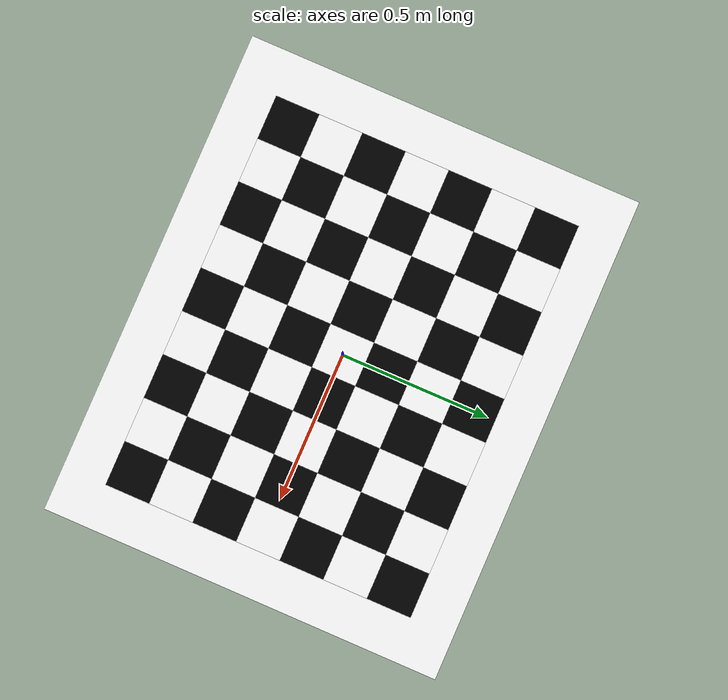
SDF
<?xml version="1.0"?>
<sdf version="1.5">
  <model name="checkerboard_9_7_0_15">
  <static>true</static>
  <link name="checkerboard_9_7_0_15_body">
      <visual name="checker_0_0">
        <pose>-0.6 -0.45 0 0 0 0</pose>
        <geometry>
          <box>
            <size>0.15 0.15 0.02</size>
          </box>
        </geometry>
        <material>
          <ambient>0 0 0 1</ambient>
          <diffuse>0 0 0 1</diffuse>
          <specular>0 0 0 1</specular>
          <emissive>0 0 0 1</emissive>
        </material>
      </visual>
      <visual name="checker_0_1">
        <pose>-0.6 -0.3 0 0 0 0</pose>
        <geometry>
          <box>
            <size>0.15 0.15 0.02</size>
          </box>
        </geometry>
        <material>
          <ambient>1 1 1 1</ambient>
          <diffuse>1 1 1 1</diffuse>
          <specular>1 1 1 1</specular>
          <emissive>1 1 1 1</emissive>
        </material>
      </visual>
      <visual name="checker_0_2">
        <pose>-0.6 -0.15 0 0 0 0</pose>
        <geometry>
          <box>
            <size>0.15 0.15 0.02</size>
          </box>
        </geometry>
        <material>
          <ambient>0 0 0 1</ambient>
          <diffuse>0 0 0 1</diffuse>
          <specular>0 0 0 1</specular>
          <emissive>0 0 0 1</emissive>
        </material>
      </visual>
      <visual name="checker_0_3">
        <pose>-0.6 -1.11022302463e-16 0 0 0 0</pose>
        <geometry>
          <box>
            <size>0.15 0.15 0.02</size>
          </box>
        </geometry>
        <material>
          <ambient>1 1 1 1</ambient>
          <diffuse>1 1 1 1</diffuse>
          <specular>1 1 1 1</specular>
          <emissive>1 1 1 1</emissive>
        </material>
      </visual>
      <visual name="checker_0_4">
        <pose>-0.6 0.15 0 0 0 0</pose>
        <geometry>
          <box>
            <size>0.15 0.15 0.02</size>
          </box>
        </geometry>
        <material>
          <ambient>0 0 0 1</ambient>
          <diffuse>0 0 0 1</diffuse>
          <specular>0 0 0 1</specular>
          <emissive>0 0 0 1</emissive>
        </material>
      </visual>
      <visual name="checker_0_5">
        <pose>-0.6 0.3 0 0 0 0</pose>
        <geometry>
          <box>
            <size>0.15 0.15 0.02</size>
          </box>
        </geometry>
        <material>
          <ambient>1 1 1 1</ambient>
          <diffuse>1 1 1 1</diffuse>
          <specular>1 1 1 1</specular>
          <emissive>1 1 1 1</emissive>
        </material>
      </visual>
      <visual name="checker_0_6">
        <pose>-0.6 0.45 0 0 0 0</pose>
        <geometry>
          <box>
            <size>0.15 0.15 0.02</size>
          </box>
        </geometry>
        <material>
          <ambient>0 0 0 1</ambient>
          <diffuse>0 0 0 1</diffuse>
          <specular>0 0 0 1</specular>
          <emissive>0 0 0 1</emissive>
        </material>
      </visual>
      <visual name="checker_1_0">
        <pose>-0.45 -0.45 0 0 0 0</pose>
        <geometry>
          <box>
            <size>0.15 0.15 0.02</size>
          </box>
        </geometry>
        <material>
          <ambient>1 1 1 1</ambient>
          <diffuse>1 1 1 1</diffuse>
          <specular>1 1 1 1</specular>
          <emissive>1 1 1 1</emissive>
        </material>
      </visual>
      <visual name="checker_1_1">
        <pose>-0.45 -0.3 0 0 0 0</pose>
        <geometry>
          <box>
            <size>0.15 0.15 0.02</size>
          </box>
        </geometry>
        <material>
          <ambient>0 0 0 1</ambient>
          <diffuse>0 0 0 1</diffuse>
          <specular>0 0 0 1</specular>
          <emissive>0 0 0 1</emissive>
        </material>
      </visual>
      <visual name="checker_1_2">
        <pose>-0.45 -0.15 0 0 0 0</pose>
        <geometry>
          <box>
            <size>0.15 0.15 0.02</size>
          </box>
        </geometry>
        <material>
          <ambient>1 1 1 1</ambient>
          <diffuse>1 1 1 1</diffuse>
          <specular>1 1 1 1</specular>
          <emissive>1 1 1 1</emissive>
        </material>
      </visual>
      <visual name="checker_1_3">
        <pose>-0.45 -1.11022302463e-16 0 0 0 0</pose>
        <geometry>
          <box>
            <size>0.15 0.15 0.02</size>
          </box>
        </geometry>
        <material>
          <ambient>0 0 0 1</ambient>
          <diffuse>0 0 0 1</diffuse>
          <specular>0 0 0 1</specular>
          <emissive>0 0 0 1</emissive>
        </material>
      </visual>
      <visual name="checker_1_4">
        <pose>-0.45 0.15 0 0 0 0</pose>
        <geometry>
          <box>
            <size>0.15 0.15 0.02</size>
          </box>
        </geometry>
        <material>
          <ambient>1 1 1 1</ambient>
          <diffuse>1 1 1 1</diffuse>
          <specular>1 1 1 1</specular>
          <emissive>1 1 1 1</emissive>
        </material>
      </visual>
      <visual name="checker_1_5">
        <pose>-0.45 0.3 0 0 0 0</pose>
        <geometry>
          <box>
            <size>0.15 0.15 0.02</size>
          </box>
        </geometry>
        <material>
          <ambient>0 0 0 1</ambient>
          <diffuse>0 0 0 1</diffuse>
          <specular>0 0 0 1</specular>
          <emissive>0 0 0 1</emissive>
        </material>
      </visual>
      <visual name="checker_1_6">
        <pose>-0.45 0.45 0 0 0 0</pose>
        <geometry>
          <box>
            <size>0.15 0.15 0.02</size>
          </box>
        </geometry>
        <material>
          <ambient>1 1 1 1</ambient>
          <diffuse>1 1 1 1</diffuse>
          <specular>1 1 1 1</specular>
          <emissive>1 1 1 1</emissive>
        </material>
      </visual>
      <visual name="checker_2_0">
        <pose>-0.3 -0.45 0 0 0 0</pose>
        <geometry>
          <box>
            <size>0.15 0.15 0.02</size>
          </box>
        </geometry>
        <material>
          <ambient>0 0 0 1</ambient>
          <diffuse>0 0 0 1</diffuse>
          <specular>0 0 0 1</specular>
          <emissive>0 0 0 1</emissive>
        </material>
      </visual>
      <visual name="checker_2_1">
        <pose>-0.3 -0.3 0 0 0 0</pose>
        <geometry>
          <box>
            <size>0.15 0.15 0.02</size>
          </box>
        </geometry>
        <material>
          <ambient>1 1 1 1</ambient>
          <diffuse>1 1 1 1</diffuse>
          <specular>1 1 1 1</specular>
          <emissive>1 1 1 1</emissive>
        </material>
      </visual>
      <visual name="checker_2_2">
        <pose>-0.3 -0.15 0 0 0 0</pose>
        <geometry>
          <box>
            <size>0.15 0.15 0.02</size>
          </box>
        </geometry>
        <material>
          <ambient>0 0 0 1</ambient>
          <diffuse>0 0 0 1</diffuse>
          <specular>0 0 0 1</specular>
          <emissive>0 0 0 1</emissive>
        </material>
      </visual>
      <visual name="checker_2_3">
        <pose>-0.3 -1.11022302463e-16 0 0 0 0</pose>
        <geometry>
          <box>
            <size>0.15 0.15 0.02</size>
          </box>
        </geometry>
        <material>
          <ambient>1 1 1 1</ambient>
          <diffuse>1 1 1 1</diffuse>
          <specular>1 1 1 1</specular>
          <emissive>1 1 1 1</emissive>
        </material>
      </visual>
      <visual name="checker_2_4">
        <pose>-0.3 0.15 0 0 0 0</pose>
        <geometry>
          <box>
            <size>0.15 0.15 0.02</size>
          </box>
        </geometry>
        <material>
          <ambient>0 0 0 1</ambient>
          <diffuse>0 0 0 1</diffuse>
          <specular>0 0 0 1</specular>
          <emissive>0 0 0 1</emissive>
        </material>
      </visual>
      <visual name="checker_2_5">
        <pose>-0.3 0.3 0 0 0 0</pose>
        <geometry>
          <box>
            <size>0.15 0.15 0.02</size>
          </box>
        </geometry>
        <material>
          <ambient>1 1 1 1</ambient>
          <diffuse>1 1 1 1</diffuse>
          <specular>1 1 1 1</specular>
          <emissive>1 1 1 1</emissive>
        </material>
      </visual>
      <visual name="checker_2_6">
        <pose>-0.3 0.45 0 0 0 0</pose>
        <geometry>
          <box>
            <size>0.15 0.15 0.02</size>
          </box>
        </geometry>
        <material>
          <ambient>0 0 0 1</ambient>
          <diffuse>0 0 0 1</diffuse>
          <specular>0 0 0 1</specular>
          <emissive>0 0 0 1</emissive>
        </material>
      </visual>
      <visual name="checker_3_0">
        <pose>-0.15 -0.45 0 0 0 0</pose>
        <geometry>
          <box>
            <size>0.15 0.15 0.02</size>
          </box>
        </geometry>
        <material>
          <ambient>1 1 1 1</ambient>
          <diffuse>1 1 1 1</diffuse>
          <specular>1 1 1 1</specular>
          <emissive>1 1 1 1</emissive>
        </material>
      </visual>
      <visual name="checker_3_1">
        <pose>-0.15 -0.3 0 0 0 0</pose>
        <geometry>
          <box>
            <size>0.15 0.15 0.02</size>
          </box>
        </geometry>
        <material>
          <ambient>0 0 0 1</ambient>
          <diffuse>0 0 0 1</diffuse>
          <specular>0 0 0 1</specular>
          <emissive>0 0 0 1</emissive>
        </material>
      </visual>
      <visual name="checker_3_2">
        <pose>-0.15 -0.15 0 0 0 0</pose>
        <geometry>
          <box>
            <size>0.15 0.15 0.02</size>
          </box>
        </geometry>
        <material>
          <ambient>1 1 1 1</ambient>
          <diffuse>1 1 1 1</diffuse>
          <specular>1 1 1 1</specular>
          <emissive>1 1 1 1</emissive>
        </material>
      </visual>
      <visual name="checker_3_3">
        <pose>-0.15 -1.11022302463e-16 0 0 0 0</pose>
        <geometry>
          <box>
            <size>0.15 0.15 0.02</size>
          </box>
        </geometry>
        <material>
          <ambient>0 0 0 1</ambient>
          <diffuse>0 0 0 1</diffuse>
          <specular>0 0 0 1</specular>
          <emissive>0 0 0 1</emissive>
        </material>
      </visual>
      <visual name="checker_3_4">
        <pose>-0.15 0.15 0 0 0 0</pose>
        <geometry>
          <box>
            <size>0.15 0.15 0.02</size>
          </box>
        </geometry>
        <material>
          <ambient>1 1 1 1</ambient>
          <diffuse>1 1 1 1</diffuse>
          <specular>1 1 1 1</specular>
          <emissive>1 1 1 1</emissive>
        </material>
      </visual>
      <visual name="checker_3_5">
        <pose>-0.15 0.3 0 0 0 0</pose>
        <geometry>
          <box>
            <size>0.15 0.15 0.02</size>
          </box>
        </geometry>
        <material>
          <ambient>0 0 0 1</ambient>
          <diffuse>0 0 0 1</diffuse>
          <specular>0 0 0 1</specular>
          <emissive>0 0 0 1</emissive>
        </material>
      </visual>
      <visual name="checker_3_6">
        <pose>-0.15 0.45 0 0 0 0</pose>
        <geometry>
          <box>
            <size>0.15 0.15 0.02</size>
          </box>
        </geometry>
        <material>
          <ambient>1 1 1 1</ambient>
          <diffuse>1 1 1 1</diffuse>
          <specular>1 1 1 1</specular>
          <emissive>1 1 1 1</emissive>
        </material>
      </visual>
      <visual name="checker_4_0">
        <pose>0.0 -0.45 0 0 0 0</pose>
        <geometry>
          <box>
            <size>0.15 0.15 0.02</size>
          </box>
        </geometry>
        <material>
          <ambient>0 0 0 1</ambient>
          <diffuse>0 0 0 1</diffuse>
          <specular>0 0 0 1</specular>
          <emissive>0 0 0 1</emissive>
        </material>
      </visual>
      <visual name="checker_4_1">
        <pose>0.0 -0.3 0 0 0 0</pose>
        <geometry>
          <box>
            <size>0.15 0.15 0.02</size>
          </box>
        </geometry>
        <material>
          <ambient>1 1 1 1</ambient>
          <diffuse>1 1 1 1</diffuse>
          <specular>1 1 1 1</specular>
          <emissive>1 1 1 1</emissive>
        </material>
      </visual>
      <visual name="checker_4_2">
        <pose>0.0 -0.15 0 0 0 0</pose>
        <geometry>
          <box>
            <size>0.15 0.15 0.02</size>
          </box>
        </geometry>
        <material>
          <ambient>0 0 0 1</ambient>
          <diffuse>0 0 0 1</diffuse>
          <specular>0 0 0 1</specular>
          <emissive>0 0 0 1</emissive>
        </material>
      </visual>
      <visual name="checker_4_3">
        <pose>0.0 -1.11022302463e-16 0 0 0 0</pose>
        <geometry>
          <box>
            <size>0.15 0.15 0.02</size>
          </box>
        </geometry>
        <material>
          <ambient>1 1 1 1</ambient>
          <diffuse>1 1 1 1</diffuse>
          <specular>1 1 1 1</specular>
          <emissive>1 1 1 1</emissive>
        </material>
      </visual>
      <visual name="checker_4_4">
        <pose>0.0 0.15 0 0 0 0</pose>
        <geometry>
          <box>
            <size>0.15 0.15 0.02</size>
          </box>
        </geometry>
        <material>
          <ambient>0 0 0 1</ambient>
          <diffuse>0 0 0 1</diffuse>
          <specular>0 0 0 1</specular>
          <emissive>0 0 0 1</emissive>
        </material>
      </visual>
      <visual name="checker_4_5">
        <pose>0.0 0.3 0 0 0 0</pose>
        <geometry>
          <box>
            <size>0.15 0.15 0.02</size>
          </box>
        </geometry>
        <material>
          <ambient>1 1 1 1</ambient>
          <diffuse>1 1 1 1</diffuse>
          <specular>1 1 1 1</specular>
          <emissive>1 1 1 1</emissive>
        </material>
      </visual>
      <visual name="checker_4_6">
        <pose>0.0 0.45 0 0 0 0</pose>
        <geometry>
          <box>
            <size>0.15 0.15 0.02</size>
          </box>
        </geometry>
        <material>
          <ambient>0 0 0 1</ambient>
          <diffuse>0 0 0 1</diffuse>
          <specular>0 0 0 1</specular>
          <emissive>0 0 0 1</emissive>
        </material>
      </visual>
      <visual name="checker_5_0">
        <pose>0.15 -0.45 0 0 0 0</pose>
        <geometry>
          <box>
            <size>0.15 0.15 0.02</size>
          </box>
        </geometry>
        <material>
          <ambient>1 1 1 1</ambient>
          <diffuse>1 1 1 1</diffuse>
          <specular>1 1 1 1</specular>
          <emissive>1 1 1 1</emissive>
        </material>
      </visual>
      <visual name="checker_5_1">
        <pose>0.15 -0.3 0 0 0 0</pose>
        <geometry>
          <box>
            <size>0.15 0.15 0.02</size>
          </box>
        </geometry>
        <material>
          <ambient>0 0 0 1</ambient>
          <diffuse>0 0 0 1</diffuse>
          <specular>0 0 0 1</specular>
          <emissive>0 0 0 1</emissive>
        </material>
      </visual>
      <visual name="checker_5_2">
        <pose>0.15 -0.15 0 0 0 0</pose>
        <geometry>
          <box>
            <size>0.15 0.15 0.02</size>
          </box>
        </geometry>
        <material>
          <ambient>1 1 1 1</ambient>
          <diffuse>1 1 1 1</diffuse>
          <specular>1 1 1 1</specular>
          <emissive>1 1 1 1</emissive>
        </material>
      </visual>
      <visual name="checker_5_3">
        <pose>0.15 -1.11022302463e-16 0 0 0 0</pose>
        <geometry>
          <box>
            <size>0.15 0.15 0.02</size>
          </box>
        </geometry>
        <material>
          <ambient>0 0 0 1</ambient>
          <diffuse>0 0 0 1</diffuse>
          <specular>0 0 0 1</specular>
          <emissive>0 0 0 1</emissive>
        </material>
      </visual>
      <visual name="checker_5_4">
        <pose>0.15 0.15 0 0 0 0</pose>
        <geometry>
          <box>
            <size>0.15 0.15 0.02</size>
          </box>
        </geometry>
        <material>
          <ambient>1 1 1 1</ambient>
          <diffuse>1 1 1 1</diffuse>
          <specular>1 1 1 1</specular>
          <emissive>1 1 1 1</emissive>
        </material>
      </visual>
      <visual name="checker_5_5">
        <pose>0.15 0.3 0 0 0 0</pose>
        <geometry>
          <box>
            <size>0.15 0.15 0.02</size>
          </box>
        </geometry>
        <material>
          <ambient>0 0 0 1</ambient>
          <diffuse>0 0 0 1</diffuse>
          <specular>0 0 0 1</specular>
          <emissive>0 0 0 1</emissive>
        </material>
      </visual>
      <visual name="checker_5_6">
        <pose>0.15 0.45 0 0 0 0</pose>
        <geometry>
          <box>
            <size>0.15 0.15 0.02</size>
          </box>
        </geometry>
        <material>
          <ambient>1 1 1 1</ambient>
          <diffuse>1 1 1 1</diffuse>
          <specular>1 1 1 1</specular>
          <emissive>1 1 1 1</emissive>
        </material>
      </visual>
      <visual name="checker_6_0">
        <pose>0.3 -0.45 0 0 0 0</pose>
        <geometry>
          <box>
            <size>0.15 0.15 0.02</size>
          </box>
        </geometry>
        <material>
          <ambient>0 0 0 1</ambient>
          <diffuse>0 0 0 1</diffuse>
          <specular>0 0 0 1</specular>
          <emissive>0 0 0 1</emissive>
        </material>
      </visual>
      <visual name="checker_6_1">
        <pose>0.3 -0.3 0 0 0 0</pose>
        <geometry>
          <box>
            <size>0.15 0.15 0.02</size>
          </box>
        </geometry>
        <material>
          <ambient>1 1 1 1</ambient>
          <diffuse>1 1 1 1</diffuse>
          <specular>1 1 1 1</specular>
          <emissive>1 1 1 1</emissive>
        </material>
      </visual>
      <visual name="checker_6_2">
        <pose>0.3 -0.15 0 0 0 0</pose>
        <geometry>
          <box>
            <size>0.15 0.15 0.02</size>
          </box>
        </geometry>
        <material>
          <ambient>0 0 0 1</ambient>
          <diffuse>0 0 0 1</diffuse>
          <specular>0 0 0 1</specular>
          <emissive>0 0 0 1</emissive>
        </material>
      </visual>
      <visual name="checker_6_3">
        <pose>0.3 -1.11022302463e-16 0 0 0 0</pose>
        <geometry>
          <box>
            <size>0.15 0.15 0.02</size>
          </box>
        </geometry>
        <material>
          <ambient>1 1 1 1</ambient>
          <diffuse>1 1 1 1</diffuse>
          <specular>1 1 1 1</specular>
          <emissive>1 1 1 1</emissive>
        </material>
      </visual>
      <visual name="checker_6_4">
        <pose>0.3 0.15 0 0 0 0</pose>
        <geometry>
          <box>
            <size>0.15 0.15 0.02</size>
          </box>
        </geometry>
        <material>
          <ambient>0 0 0 1</ambient>
          <diffuse>0 0 0 1</diffuse>
          <specular>0 0 0 1</specular>
          <emissive>0 0 0 1</emissive>
        </material>
      </visual>
      <visual name="checker_6_5">
        <pose>0.3 0.3 0 0 0 0</pose>
        <geometry>
          <box>
            <size>0.15 0.15 0.02</size>
          </box>
        </geometry>
        <material>
          <ambient>1 1 1 1</ambient>
          <diffuse>1 1 1 1</diffuse>
          <specular>1 1 1 1</specular>
          <emissive>1 1 1 1</emissive>
        </material>
      </visual>
      <visual name="checker_6_6">
        <pose>0.3 0.45 0 0 0 0</pose>
        <geometry>
          <box>
            <size>0.15 0.15 0.02</size>
          </box>
        </geometry>
        <material>
          <ambient>0 0 0 1</ambient>
          <diffuse>0 0 0 1</diffuse>
          <specular>0 0 0 1</specular>
          <emissive>0 0 0 1</emissive>
        </material>
      </visual>
      <visual name="checker_7_0">
        <pose>0.45 -0.45 0 0 0 0</pose>
        <geometry>
          <box>
            <size>0.15 0.15 0.02</size>
          </box>
        </geometry>
        <material>
          <ambient>1 1 1 1</ambient>
          <diffuse>1 1 1 1</diffuse>
          <specular>1 1 1 1</specular>
          <emissive>1 1 1 1</emissive>
        </material>
      </visual>
      <visual name="checker_7_1">
        <pose>0.45 -0.3 0 0 0 0</pose>
        <geometry>
          <box>
            <size>0.15 0.15 0.02</size>
          </box>
        </geometry>
        <material>
          <ambient>0 0 0 1</ambient>
          <diffuse>0 0 0 1</diffuse>
          <specular>0 0 0 1</specular>
          <emissive>0 0 0 1</emissive>
        </material>
      </visual>
      <visual name="checker_7_2">
        <pose>0.45 -0.15 0 0 0 0</pose>
        <geometry>
          <box>
            <size>0.15 0.15 0.02</size>
          </box>
        </geometry>
        <material>
          <ambient>1 1 1 1</ambient>
          <diffuse>1 1 1 1</diffuse>
          <specular>1 1 1 1</specular>
          <emissive>1 1 1 1</emissive>
        </material>
      </visual>
      <visual name="checker_7_3">
        <pose>0.45 -1.11022302463e-16 0 0 0 0</pose>
        <geometry>
          <box>
            <size>0.15 0.15 0.02</size>
          </box>
        </geometry>
        <material>
          <ambient>0 0 0 1</ambient>
          <diffuse>0 0 0 1</diffuse>
          <specular>0 0 0 1</specular>
          <emissive>0 0 0 1</emissive>
        </material>
      </visual>
      <visual name="checker_7_4">
        <pose>0.45 0.15 0 0 0 0</pose>
        <geometry>
          <box>
            <size>0.15 0.15 0.02</size>
          </box>
        </geometry>
        <material>
          <ambient>1 1 1 1</ambient>
          <diffuse>1 1 1 1</diffuse>
          <specular>1 1 1 1</specular>
          <emissive>1 1 1 1</emissive>
        </material>
      </visual>
      <visual name="checker_7_5">
        <pose>0.45 0.3 0 0 0 0</pose>
        <geometry>
          <box>
            <size>0.15 0.15 0.02</size>
          </box>
        </geometry>
        <material>
          <ambient>0 0 0 1</ambient>
          <diffuse>0 0 0 1</diffuse>
          <specular>0 0 0 1</specular>
          <emissive>0 0 0 1</emissive>
        </material>
      </visual>
      <visual name="checker_7_6">
        <pose>0.45 0.45 0 0 0 0</pose>
        <geometry>
          <box>
            <size>0.15 0.15 0.02</size>
          </box>
        </geometry>
        <material>
          <ambient>1 1 1 1</ambient>
          <diffuse>1 1 1 1</diffuse>
          <specular>1 1 1 1</specular>
          <emissive>1 1 1 1</emissive>
        </material>
      </visual>
      <visual name="checker_8_0">
        <pose>0.6 -0.45 0 0 0 0</pose>
        <geometry>
          <box>
            <size>0.15 0.15 0.02</size>
          </box>
        </geometry>
        <material>
          <ambient>0 0 0 1</ambient>
          <diffuse>0 0 0 1</diffuse>
          <specular>0 0 0 1</specular>
          <emissive>0 0 0 1</emissive>
        </material>
      </visual>
      <visual name="checker_8_1">
        <pose>0.6 -0.3 0 0 0 0</pose>
        <geometry>
          <box>
            <size>0.15 0.15 0.02</size>
          </box>
        </geometry>
        <material>
          <ambient>1 1 1 1</ambient>
          <diffuse>1 1 1 1</diffuse>
          <specular>1 1 1 1</specular>
          <emissive>1 1 1 1</emissive>
        </material>
      </visual>
      <visual name="checker_8_2">
        <pose>0.6 -0.15 0 0 0 0</pose>
        <geometry>
          <box>
            <size>0.15 0.15 0.02</size>
          </box>
        </geometry>
        <material>
          <ambient>0 0 0 1</ambient>
          <diffuse>0 0 0 1</diffuse>
          <specular>0 0 0 1</specular>
          <emissive>0 0 0 1</emissive>
        </material>
      </visual>
      <visual name="checker_8_3">
        <pose>0.6 -1.11022302463e-16 0 0 0 0</pose>
        <geometry>
          <box>
            <size>0.15 0.15 0.02</size>
          </box>
        </geometry>
        <material>
          <ambient>1 1 1 1</ambient>
          <diffuse>1 1 1 1</diffuse>
          <specular>1 1 1 1</specular>
          <emissive>1 1 1 1</emissive>
        </material>
      </visual>
      <visual name="checker_8_4">
        <pose>0.6 0.15 0 0 0 0</pose>
        <geometry>
          <box>
            <size>0.15 0.15 0.02</size>
          </box>
        </geometry>
        <material>
          <ambient>0 0 0 1</ambient>
          <diffuse>0 0 0 1</diffuse>
          <specular>0 0 0 1</specular>
          <emissive>0 0 0 1</emissive>
        </material>
      </visual>
      <visual name="checker_8_5">
        <pose>0.6 0.3 0 0 0 0</pose>
        <geometry>
          <box>
            <size>0.15 0.15 0.02</size>
          </box>
        </geometry>
        <material>
          <ambient>1 1 1 1</ambient>
          <diffuse>1 1 1 1</diffuse>
          <specular>1 1 1 1</specular>
          <emissive>1 1 1 1</emissive>
        </material>
      </visual>
      <visual name="checker_8_6">
        <pose>0.6 0.45 0 0 0 0</pose>
        <geometry>
          <box>
            <size>0.15 0.15 0.02</size>
          </box>
        </geometry>
        <material>
          <ambient>0 0 0 1</ambient>
          <diffuse>0 0 0 1</diffuse>
          <specular>0 0 0 1</specular>
          <emissive>0 0 0 1</emissive>
        </material>
      </visual>
      <visual name="checker_backdrop">
        <pose>0 0 0 0 0 0</pose>
        <geometry>
          <box>
            <size>1.65 1.35 0.0001</size>
          </box>
        </geometry>
        <material>
          <ambient>1 1 1 1</ambient>
          <diffuse>1 1 1 1</diffuse>
          <specular>1 1 1 1</specular>
          <emissive>1 1 1 1</emissive>
        </material>
      </visual>
    </link>
  </model>
</sdf>
